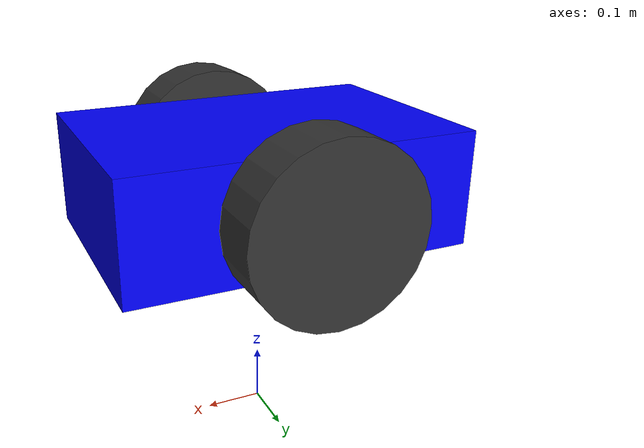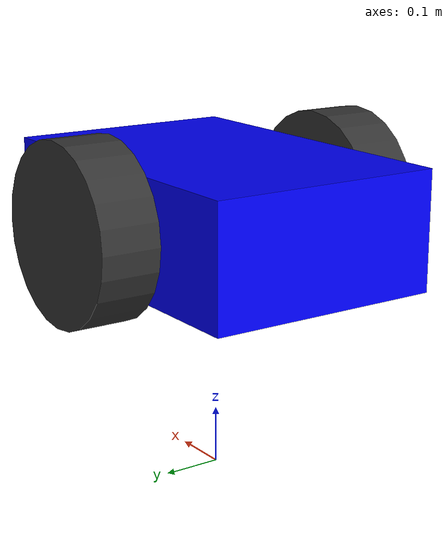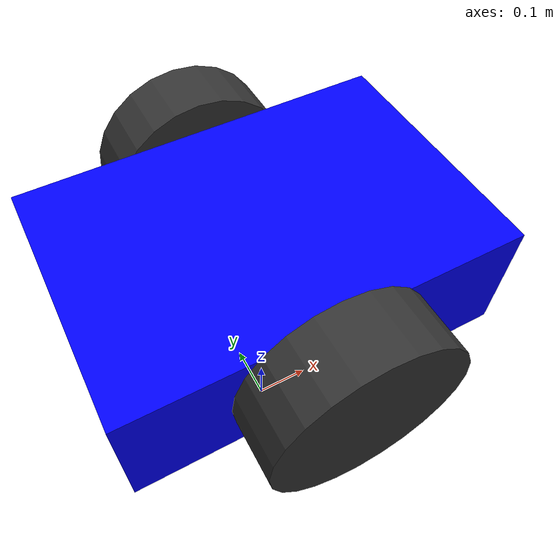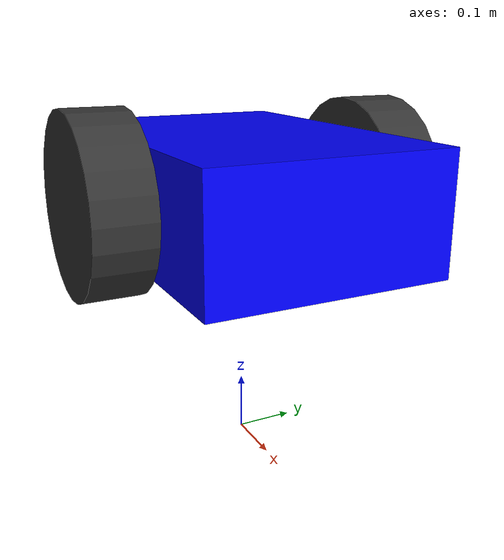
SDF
<?xml version="1.0" ?>
<sdf version="1.8">
  <model name='simple_robot'>
    <pose>0 0 0.3 0 0 0</pose>

    <!-- Chassis -->
    <link name='chassis'>
      <pose>0 0 0.15 0 0 0</pose>
      <inertial>
        <mass>5.0</mass>
        <inertia>
          <ixx>0.5</ixx> <iyy>0.5</iyy> <izz>0.5</izz>
        </inertia>
      </inertial>
      <visual name='visual'>
        <geometry>
          <box><size>0.6 0.4 0.2</size></box>
        </geometry>
        <material>
          <ambient>0 0 1 1</ambient>
          <diffuse>0 0 1 1</diffuse>
        </material>
      </visual>
      <collision name='collision'>
        <geometry>
          <box><size>0.6 0.4 0.2</size></box>
        </geometry>
      </collision>
    </link>

    <!-- Left Wheel -->
    <link name='left_wheel'>
      <pose>0 0.25 0.15 -1.5707 0 0</pose>
      <inertial>
        <mass>1</mass>
        <inertia>
          <ixx>0.05</ixx> <iyy>0.05</iyy> <izz>0.05</izz>
        </inertia>
      </inertial>
      <visual name='visual'>
        <geometry>
          <cylinder>
            <radius>0.15</radius>
            <length>0.1</length>
          </cylinder>
        </geometry>
        <material>
          <ambient>0.2 0.2 0.2 1</ambient>
        </material>
      </visual>
      <collision name='collision'>
        <geometry>
          <cylinder>
            <radius>0.15</radius>
            <length>0.1</length>
          </cylinder>
        </geometry>
        <surface>
          <friction>
            <ode><mu>1.0</mu><mu2>1.0</mu2></ode>
          </friction>
        </surface>
      </collision>
    </link>

    <!-- Right Wheel -->
    <link name='right_wheel'>
      <pose>0 -0.25 0.15 -1.5707 0 0</pose>
      <inertial>
        <mass>1</mass>
        <inertia>
          <ixx>0.05</ixx> <iyy>0.05</iyy> <izz>0.05</izz>
        </inertia>
      </inertial>
      <visual name='visual'>
        <geometry>
          <cylinder>
            <radius>0.15</radius>
            <length>0.1</length>
          </cylinder>
        </geometry>
        <material>
          <ambient>0.2 0.2 0.2 1</ambient>
        </material>
      </visual>
      <collision name='collision'>
        <geometry>
          <cylinder>
            <radius>0.15</radius>
            <length>0.1</length>
          </cylinder>
        </geometry>
        <surface>
          <friction>
            <ode><mu>1.0</mu><mu2>1.0</mu2></ode>
          </friction>
        </surface>
      </collision>
    </link>

    <!-- Joints -->
    <joint name='left_wheel_joint' type='revolute'>
      <parent>chassis</parent>
      <child>left_wheel</child>
      <axis>
        <xyz>0 0 1</xyz>
        <limit>
          <effort>10</effort>
          <velocity>100</velocity>
        </limit>
        <dynamics>
          <damping>0.5</damping>
          <friction>0.1</friction>
        </dynamics>
      </axis>
    </joint>

    <joint name='right_wheel_joint' type='revolute'>
      <parent>chassis</parent>
      <child>right_wheel</child>
      <axis>
        <xyz>0 0 1</xyz>
        <limit>
          <effort>10</effort>
          <velocity>100</velocity>
        </limit>
        <dynamics>
          <damping>0.5</damping>
          <friction>0.1</friction>
        </dynamics>
      </axis>
    </joint>

    <!-- Odometry Publisher -->
    <plugin filename="gz-sim-odometry-publisher-system"
            name="gz::sim::systems::OdometryPublisher">
      <odom_frame>odom</odom_frame>
      <robot_base_frame>chassis</robot_base_frame>
      <odom_topic>/odom</odom_topic>
      <odom_publish_frequency>20</odom_publish_frequency>
    </plugin>

    <!-- Joint Force Plugins (like the working wheel test) -->
    <plugin filename="gz-sim-apply-joint-force-system"
            name="gz::sim::systems::ApplyJointForce">
      <joint_name>left_wheel_joint</joint_name>
    </plugin>

    <plugin filename="gz-sim-apply-joint-force-system"
            name="gz::sim::systems::ApplyJointForce">
      <joint_name>right_wheel_joint</joint_name>
    </plugin>

  </model>
</sdf>
